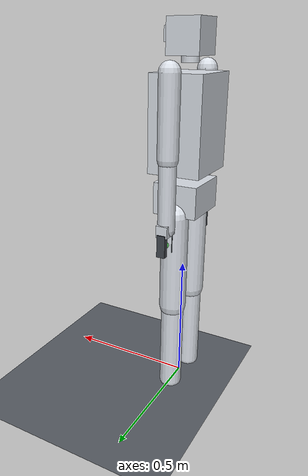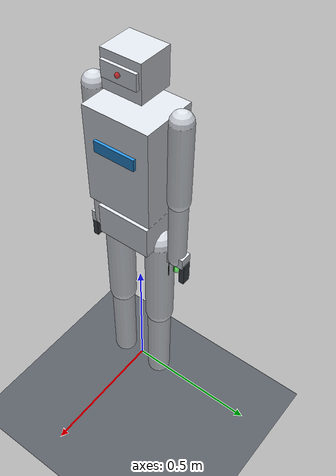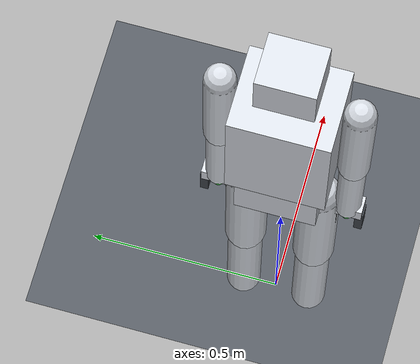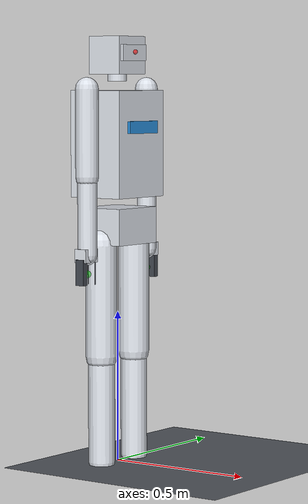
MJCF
<mujoco model="pyunto_scene">
  <include file="pyunto_h1.xml"/>

  <statistic center="0 0 0.7" extent="2.5"/>

  <option timestep="0.005" iterations="50" solver="Newton" cone="elliptic"/>

  <visual>
    <headlight diffuse="0.6 0.6 0.6" ambient="0.35 0.35 0.35" specular="0 0 0"/>
    <rgba haze="0.15 0.25 0.35 1"/>
    <global azimuth="140" elevation="-20" offwidth="1280" offheight="960"/>
    <map znear="0.02" zfar="30"/>
  </visual>

  <asset>
    <texture type="skybox" builtin="gradient" rgb1="0.5 0.6 0.72" rgb2="0.1 0.12 0.16"
             width="512" height="640"/>
    <texture name="floor_tex" type="2d" builtin="checker" rgb1="0.30 0.32 0.35"
             rgb2="0.38 0.40 0.43" width="512" height="512"/>
    <material name="floor_mat" texture="floor_tex" texrepeat="8 8" texuniform="true"
              reflectance="0.05"/>
  </asset>

  <worldbody>
    <light name="key" pos="2 -2 4" dir="-0.4 0.4 -1" directional="true" diffuse="0.7 0.7 0.7"/>
    <light name="fill" pos="-2 2 3" dir="0.4 -0.4 -1" directional="true" diffuse="0.3 0.3 0.3"/>
    <geom name="floor" type="plane" size="0 0 0.05" material="floor_mat"
          condim="6" friction="1.2 0.05 0.01"/>
    <!-- Fixed viewpoints for debugging; the robot's own eye is head_cam. -->
    <camera name="track" mode="trackcom" pos="2.2 -2.2 1.6" xyaxes="0.7 0.7 0 -0.3 0.3 0.9"/>
    <camera name="front" pos="2.6 0 1.2" xyaxes="0 1 0 -0.35 0 0.94"/>
  </worldbody>
</mujoco>

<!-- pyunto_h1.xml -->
<mujoco model="pyunto_h1">
  <compiler angle="radian" autolimits="true"/>

  <default>
    <!-- Servo defaults. kp is per-joint-group; heavier joints get more authority below. -->
    <default class="robot">
      <geom type="capsule" condim="3" friction="0.9 0.05 0.01" density="900"
            rgba="0.85 0.87 0.9 1" group="1"/>
      <joint type="hinge" damping="2" armature="0.02" limited="true"/>
      <position kp="120" dampratio="1" ctrllimited="true"/>

      <default class="leg">
        <joint damping="5" armature="0.05"/>
        <position kp="400" forcerange="-200 200"/>
      </default>
      <default class="arm">
        <joint damping="2" armature="0.02"/>
        <position kp="150" forcerange="-60 60"/>
      </default>
      <default class="finger">
        <joint damping="0.3" armature="0.005"/>
        <geom rgba="0.25 0.27 0.3 1" friction="2.0 0.1 0.01" condim="4"/>
        <position kp="30" forcerange="-25 25"/>
      </default>
      <!-- Feet: high friction, box-ish contact so the robot does not skate. -->
      <default class="foot">
        <geom type="box" friction="1.5 0.1 0.01" condim="6" rgba="0.2 0.22 0.25 1"/>
      </default>
      <default class="accent">
        <geom rgba="0.15 0.55 0.85 1"/>
      </default>
    </default>
  </default>

  <asset>
    <material name="body_mat" rgba="0.85 0.87 0.90 1" specular="0.3" shininess="0.4"/>
    <material name="dark_mat" rgba="0.20 0.22 0.25 1" specular="0.2"/>
    <material name="accent_mat" rgba="0.15 0.55 0.85 1" specular="0.5" shininess="0.6"/>
  </asset>

  <worldbody>
    <body name="pelvis" pos="0 0 0.789" childclass="robot">
      <freejoint name="root"/>
      <inertial pos="0 0 0" mass="6.0" diaginertia="0.06 0.05 0.04"/>
      <geom name="pelvis_g" type="box" size="0.085 0.10 0.06" material="body_mat"/>

      <!-- ================= TORSO ================= -->
      <body name="torso" pos="0 0 0.105">
        <joint name="waist_yaw" axis="0 0 1" range="-1.0 1.0"/>
        <inertial pos="0 0 0.16" mass="11.0" diaginertia="0.18 0.15 0.09"/>
        <geom name="torso_g" type="box" size="0.100 0.120 0.175" pos="0 0 0.165"
              material="body_mat"/>
        <geom name="chest_g" type="box" size="0.055 0.075 0.02" pos="0.055 0 0.22"
              material="accent_mat" class="accent"/>

        <!-- ================= HEAD + CAMERA ================= -->
        <!-- A short neck stub separates the head from the torso so they do not interpenetrate. -->
        <body name="head" pos="0 0 0.455">
          <inertial pos="0 0 0.03" mass="1.2" diaginertia="0.006 0.006 0.005"/>
          <geom name="neck_g" type="cylinder" size="0.032 0.030" pos="0 0 -0.055"
                material="dark_mat"/>
          <geom name="head_g" type="box" size="0.062 0.070 0.062" material="body_mat"/>
          <geom name="visor_g" type="box" size="0.018 0.062 0.026" pos="0.055 0 0.008"
                material="dark_mat"/>
          <camera name="head_cam" pos="0.075 0 0.01" xyaxes="0 -1 0 0 0 1" fovy="75"/>
          <site name="head_cam_site" pos="0.075 0 0.01" size="0.008" rgba="1 0 0 0.6"/>
        </body>

        <!-- ================= ARMS ================= -->
        <body name="shoulder_r" pos="0 -0.160 0.345">
          <joint name="sh_pitch_r" axis="0 1 0" range="-3.1 1.6" class="arm"/>
          <joint name="sh_roll_r" axis="1 0 0" range="-1.7 0.35" class="arm"/>
          <joint name="sh_yaw_r" axis="0 0 1" range="-1.6 1.6" class="arm"/>
          <inertial pos="0 0 -0.14" mass="1.6" diaginertia="0.012 0.012 0.004"/>
          <geom name="uarm_r" type="capsule" fromto="0 0 0 0 0 -0.285" size="0.038"
                material="body_mat"/>

          <body name="forearm_r" pos="0 0 -0.285">
            <joint name="elbow_r" axis="0 1 0" range="-2.4 0.0" class="arm"/>
            <inertial pos="0 0 -0.12" mass="1.0" diaginertia="0.006 0.006 0.002"/>
            <geom name="farm_r" type="capsule" fromto="0 0 0 0 0 -0.255" size="0.032"
                  material="body_mat"/>

            <!-- Palm + 2 fingers. Fingers are coupled by a tendon and driven by one actuator. -->
            <body name="palm_r" pos="0 0 -0.255">
              <inertial pos="0 0 -0.02" mass="0.25" diaginertia="0.0004 0.0004 0.0003"/>
              <geom name="palm_r_g" type="box" size="0.022 0.038 0.022" material="dark_mat"/>
              <site name="grip_r" pos="0 0 -0.062" size="0.012" rgba="0 1 0 0.5"/>
              <body name="finger_r1" pos="0 -0.032 -0.018">
                <joint name="grip_r1" axis="1 0 0" range="0 0.9" class="finger"/>
                <geom name="fing_r1" type="box" size="0.016 0.010 0.042" pos="0 0 -0.036"
                      class="finger"/>
              </body>
              <body name="finger_r2" pos="0 0.032 -0.018">
                <joint name="grip_r2" axis="-1 0 0" range="0 0.9" class="finger"/>
                <geom name="fing_r2" type="box" size="0.016 0.010 0.042" pos="0 0 -0.036"
                      class="finger"/>
              </body>
            </body>
          </body>
        </body>

        <body name="shoulder_l" pos="0 0.160 0.345">
          <joint name="sh_pitch_l" axis="0 1 0" range="-3.1 1.6" class="arm"/>
          <joint name="sh_roll_l" axis="1 0 0" range="-0.35 1.7" class="arm"/>
          <joint name="sh_yaw_l" axis="0 0 1" range="-1.6 1.6" class="arm"/>
          <inertial pos="0 0 -0.14" mass="1.6" diaginertia="0.012 0.012 0.004"/>
          <geom name="uarm_l" type="capsule" fromto="0 0 0 0 0 -0.285" size="0.038"
                material="body_mat"/>

          <body name="forearm_l" pos="0 0 -0.285">
            <joint name="elbow_l" axis="0 1 0" range="-2.4 0.0" class="arm"/>
            <inertial pos="0 0 -0.12" mass="1.0" diaginertia="0.006 0.006 0.002"/>
            <geom name="farm_l" type="capsule" fromto="0 0 0 0 0 -0.255" size="0.032"
                  material="body_mat"/>

            <body name="palm_l" pos="0 0 -0.255">
              <inertial pos="0 0 -0.02" mass="0.25" diaginertia="0.0004 0.0004 0.0003"/>
              <geom name="palm_l_g" type="box" size="0.022 0.038 0.022" material="dark_mat"/>
              <site name="grip_l" pos="0 0 -0.062" size="0.012" rgba="0 1 0 0.5"/>
              <body name="finger_l1" pos="0 -0.032 -0.018">
                <joint name="grip_l1" axis="1 0 0" range="0 0.9" class="finger"/>
                <geom name="fing_l1" type="box" size="0.016 0.010 0.042" pos="0 0 -0.036"
                      class="finger"/>
              </body>
              <body name="finger_l2" pos="0 0.032 -0.018">
                <joint name="grip_l2" axis="-1 0 0" range="0 0.9" class="finger"/>
                <geom name="fing_l2" type="box" size="0.016 0.010 0.042" pos="0 0 -0.036"
                      class="finger"/>
              </body>
            </body>
          </body>
        </body>
      </body>

      <!-- ================= LEGS ================= -->
      <!-- Hip order yaw -> roll -> pitch mirrors how humanoid IK is normally decomposed. -->
      <body name="hip_r" pos="0 -0.088 -0.062">
        <joint name="hip_yaw_r" axis="0 0 1" range="-0.7 0.7" class="leg"/>
        <joint name="hip_roll_r" axis="1 0 0" range="-0.5 0.5" class="leg"/>
        <joint name="hip_pitch_r" axis="0 1 0" range="-1.9 1.0" class="leg"/>
        <inertial pos="0 0 -0.18" mass="4.0" diaginertia="0.03 0.03 0.008"/>
        <geom name="thigh_r" type="capsule" fromto="0 0 0 0 0 -0.367" size="0.052"
              material="body_mat"/>

        <body name="shin_r" pos="0 0 -0.367">
          <joint name="knee_r" axis="0 1 0" range="0 2.2" class="leg"/>
          <inertial pos="0 0 -0.17" mass="2.8" diaginertia="0.02 0.02 0.004"/>
          <geom name="shin_r_g" type="capsule" fromto="0 0 0 0 0 -0.352" size="0.044"
                material="body_mat"/>

          <body name="foot_r" pos="0 0 -0.352">
            <joint name="ank_pitch_r" axis="0 1 0" range="-0.9 0.6" class="leg"/>
            <joint name="ank_roll_r" axis="1 0 0" range="-0.4 0.4" class="leg"/>
            <inertial pos="0.02 0 -0.03" mass="0.9" diaginertia="0.003 0.004 0.002"/>
            <geom name="foot_r_g" size="0.115 0.050 0.0225" pos="0.028 0 -0.0325" class="foot"/>
          </body>
        </body>
      </body>

      <body name="hip_l" pos="0 0.088 -0.062">
        <joint name="hip_yaw_l" axis="0 0 1" range="-0.7 0.7" class="leg"/>
        <joint name="hip_roll_l" axis="1 0 0" range="-0.5 0.5" class="leg"/>
        <joint name="hip_pitch_l" axis="0 1 0" range="-1.9 1.0" class="leg"/>
        <inertial pos="0 0 -0.18" mass="4.0" diaginertia="0.03 0.03 0.008"/>
        <geom name="thigh_l" type="capsule" fromto="0 0 0 0 0 -0.367" size="0.052"
              material="body_mat"/>

        <body name="shin_l" pos="0 0 -0.367">
          <joint name="knee_l" axis="0 1 0" range="0 2.2" class="leg"/>
          <inertial pos="0 0 -0.17" mass="2.8" diaginertia="0.02 0.02 0.004"/>
          <geom name="shin_l_g" type="capsule" fromto="0 0 0 0 0 -0.352" size="0.044"
                material="body_mat"/>

          <body name="foot_l" pos="0 0 -0.352">
            <joint name="ank_pitch_l" axis="0 1 0" range="-0.9 0.6" class="leg"/>
            <joint name="ank_roll_l" axis="1 0 0" range="-0.4 0.4" class="leg"/>
            <inertial pos="0.02 0 -0.03" mass="0.9" diaginertia="0.003 0.004 0.002"/>
            <geom name="foot_l_g" size="0.115 0.050 0.0225" pos="0.028 0 -0.0325" class="foot"/>
          </body>
        </body>
      </body>
    </body>
  </worldbody>

  <!-- Couple each hand's two fingers so one actuator closes both symmetrically. -->
  <tendon>
    <fixed name="grip_r_t">
      <joint joint="grip_r1" coef="1"/>
      <joint joint="grip_r2" coef="-1"/>
    </fixed>
    <fixed name="grip_l_t">
      <joint joint="grip_l1" coef="1"/>
      <joint joint="grip_l2" coef="-1"/>
    </fixed>
  </tendon>
  <equality>
    <tendon tendon1="grip_r_t"/>
    <tendon tendon1="grip_l_t"/>
  </equality>

  <!-- Neighbouring links always touch; excluding them avoids constant contact churn. -->
  <contact>
    <exclude body1="pelvis" body2="torso"/>
    <exclude body1="pelvis" body2="hip_r"/>
    <exclude body1="pelvis" body2="hip_l"/>
    <exclude body1="torso" body2="shoulder_r"/>
    <exclude body1="torso" body2="shoulder_l"/>
    <exclude body1="torso" body2="head"/>
    <exclude body1="palm_r" body2="finger_r1"/>
    <exclude body1="palm_r" body2="finger_r2"/>
    <exclude body1="palm_l" body2="finger_l1"/>
    <exclude body1="palm_l" body2="finger_l2"/>
  </contact>

  <actuator>
    <!-- legs (12) -->
    <position name="hip_yaw_r" joint="hip_yaw_r" ctrlrange="-0.7 0.7" class="leg"/>
    <position name="hip_roll_r" joint="hip_roll_r" ctrlrange="-0.5 0.5" class="leg"/>
    <position name="hip_pitch_r" joint="hip_pitch_r" ctrlrange="-1.9 1.0" class="leg"/>
    <position name="knee_r" joint="knee_r" ctrlrange="0 2.2" class="leg"/>
    <position name="ank_pitch_r" joint="ank_pitch_r" ctrlrange="-0.9 0.6" class="leg"/>
    <position name="ank_roll_r" joint="ank_roll_r" ctrlrange="-0.4 0.4" class="leg"/>
    <position name="hip_yaw_l" joint="hip_yaw_l" ctrlrange="-0.7 0.7" class="leg"/>
    <position name="hip_roll_l" joint="hip_roll_l" ctrlrange="-0.5 0.5" class="leg"/>
    <position name="hip_pitch_l" joint="hip_pitch_l" ctrlrange="-1.9 1.0" class="leg"/>
    <position name="knee_l" joint="knee_l" ctrlrange="0 2.2" class="leg"/>
    <position name="ank_pitch_l" joint="ank_pitch_l" ctrlrange="-0.9 0.6" class="leg"/>
    <position name="ank_roll_l" joint="ank_roll_l" ctrlrange="-0.4 0.4" class="leg"/>
    <!-- waist (1) -->
    <position name="waist_yaw" joint="waist_yaw" ctrlrange="-1.0 1.0"/>
    <!-- arms (8) -->
    <position name="sh_pitch_r" joint="sh_pitch_r" ctrlrange="-3.1 1.6" class="arm"/>
    <position name="sh_roll_r" joint="sh_roll_r" ctrlrange="-1.7 0.35" class="arm"/>
    <position name="sh_yaw_r" joint="sh_yaw_r" ctrlrange="-1.6 1.6" class="arm"/>
    <position name="elbow_r" joint="elbow_r" ctrlrange="-2.4 0.0" class="arm"/>
    <position name="sh_pitch_l" joint="sh_pitch_l" ctrlrange="-3.1 1.6" class="arm"/>
    <position name="sh_roll_l" joint="sh_roll_l" ctrlrange="-0.35 1.7" class="arm"/>
    <position name="sh_yaw_l" joint="sh_yaw_l" ctrlrange="-1.6 1.6" class="arm"/>
    <position name="elbow_l" joint="elbow_l" ctrlrange="-2.4 0.0" class="arm"/>
    <!-- grippers (2): one per hand, fingers follow via the tendon equality -->
    <position name="grip_r" joint="grip_r1" ctrlrange="0 0.9" class="finger"/>
    <position name="grip_l" joint="grip_l1" ctrlrange="0 0.9" class="finger"/>
  </actuator>

  <keyframe>
    <key name="stand"
         qpos="0 0 0.8136  1 0 0 0
               0
               -0.25 -0.12 0 -0.35   0 0
               -0.25  0.12 0 -0.35   0 0
               0 0 -0.25 0.5 -0.25 0
               0 0 -0.25 0.5 -0.25 0"/>
  </keyframe>
</mujoco>
